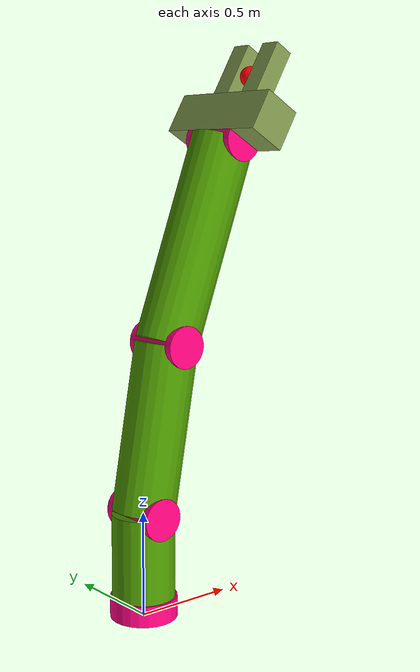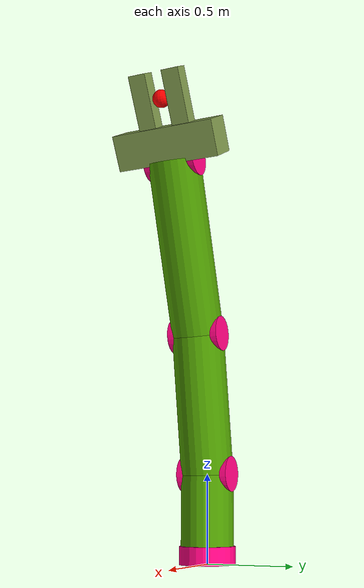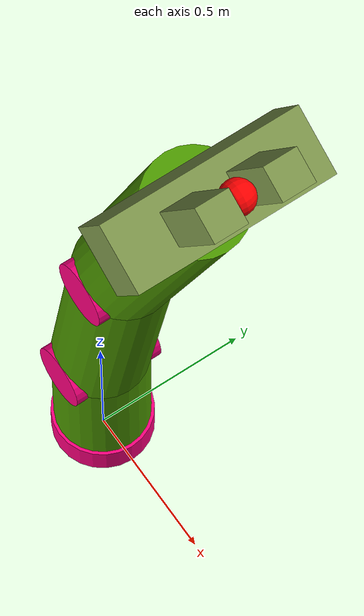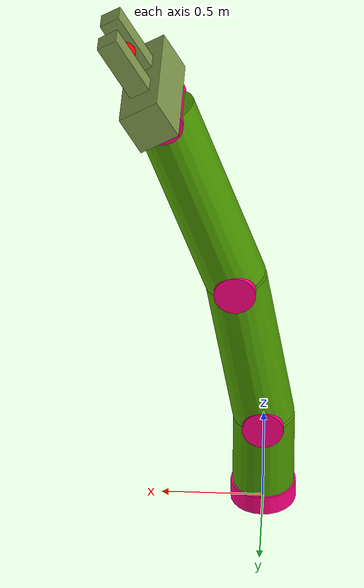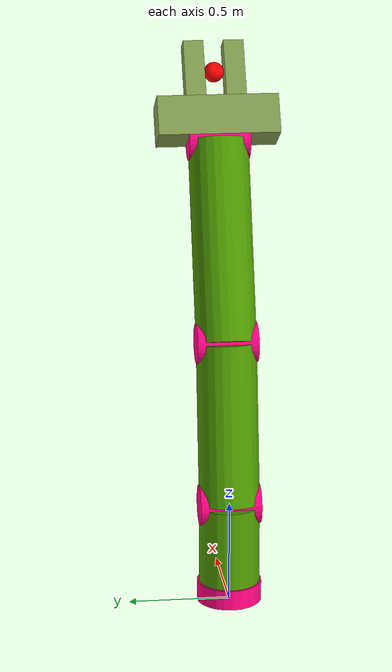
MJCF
<mujoco model="4-DoF Arm">
    <compiler inertiafromgeom="true" angle="degree"/>
    <option timestep="0.005" gravity="0 0 -5" cone="elliptic" jacobian="auto" solver="Newton" impratio="1.0"/>
    <!--  collision="predefined"  -->
    <option>
        <flag gravity="enable" override="enable"/>
    </option>
    <statistic center="0 0 0.6" extent="1"/>
    <default>
        <geom contype="1" conaffinity="1" condim="3"/>
        <joint limited="false" damping="0.5" armature="0.1" stiffness="0" frictionloss="0.1"/>
        <motor gear="1 0 0 0 0 0" ctrllimited="false" ctrlrange="-100 100"/>
    </default>
    <worldbody>
        <!--  Link1  -->
        <body name="link1" pos="0 0 0" euler="0 0 0">
            <joint name="L1" pos="0 0 0" type="hinge" axis="0 0 1" limited="false"/>
            <!--  range="-90 90"  -->
            <geom type="cylinder" pos="0 0 0.25" size="0.15 0.25" rgba="0.3 0.6 0 1"/>
            <geom type="cylinder" pos="0 0 0.05" euler="0 0 0" size="0.16 0.05" rgba="1 0 0.5 1"/>
            <!--  Link2  -->
            <body name="link2" pos="0 0 0.5" euler="90 0 -10">
                <joint name="L2" pos="0 0 0" type="hinge" axis="0 0 1" limited="true" range="-150 150"/>
                <!--  range="-150 5" -->
                <geom type="cylinder" pos="0 0.4 0" euler="-90 0 0" size="0.15 0.4" rgba="0.3 0.6 0 1"/>
                <geom type="cylinder" pos="0 0 0" euler="0 0 0" size="0.1 0.15" rgba="1 0 0.5 1"/>
                <!--  Link3 -->
                <body name="link3" pos="0 0.8 0" euler="0 0 -10">
                    <joint name="L3" pos="0 0 0" type="hinge" axis="0 0 1" limited="true" range="-150 150"/>
                    <!--  range="-5 150" -->
                    <geom type="cylinder" pos="0 0.5 0" euler="-90 0 0" size="0.15 0.5" rgba="0.3 0.6 0 1"/>
                    <geom type="cylinder" pos="0 0 0" euler="0 0 0" size="0.1 0.15" rgba="1 0 0.5 1"/>
                    <!--  Link4 -->
                    <body name="link4" pos="0 1.0 0" euler="0 0 -10">
                        <joint name="L4" pos="0 0 0" type="hinge" axis="0 0 1" limited="true" range="-160 160"/>
                        <geom type="box" pos="0 0.1 0" euler="0 0 0" size="0.1 0.1 0.3" rgba="0.5 0.6 0.3 1"/>
                        <geom type="cylinder" pos="0 0 0" euler="0 0 0" size="0.1 0.15" rgba="1 0 0.5 1"/>
                        <!--  Fingers -->
                        <body name="fingers" pos="0 0.35 0" euler="0 0 0">
                            <geom type="box" pos="0 0 -0.1" euler="0 0 0" size="0.05 0.15 0.05" rgba="0.5 0.6 0.3 1"/>
                            <geom type="box" pos="0 0 0.1" euler="0 0 0" size="0.05 0.15 0.05" rgba="0.5 0.6 0.3 1"/>
                            <site name="EE" type="sphere" pos="0 0 0" size="0.05" rgba="1 0 0 1"/>
                        </body>
                    </body>
                </body>
            </body>
        </body>
    </worldbody>
    <actuator>
        <motor joint="L1" name="link1" gear="1" ctrllimited="true" ctrlrange="-1193 1193"/>
        <motor joint="L2" name="link2" gear="1" ctrllimited="true" ctrlrange="-1193 1193"/>
        <motor joint="L3" name="link3" gear="1" ctrllimited="true" ctrlrange="-1193 1193"/>
        <motor joint="L4" name="link4" gear="1" ctrllimited="true" ctrlrange="-1193 1193"/>
    </actuator>
</mujoco>
